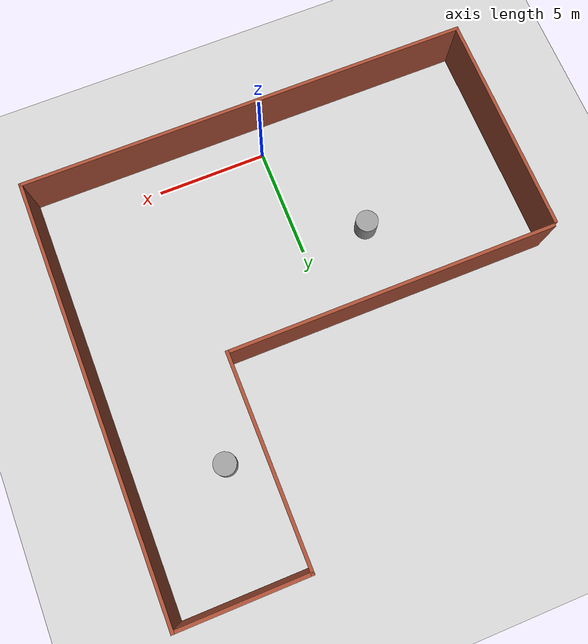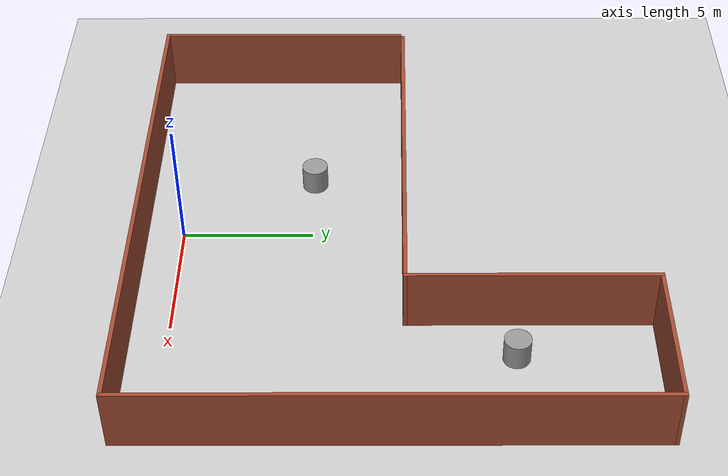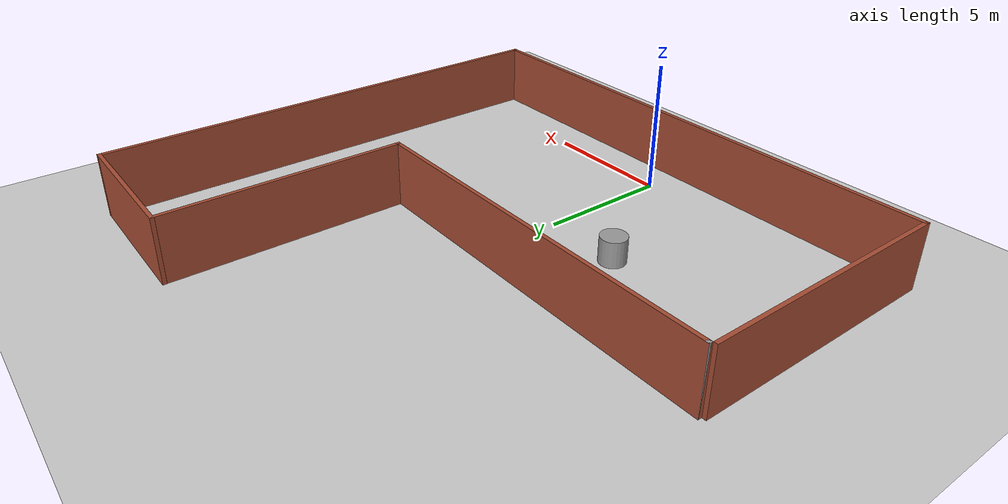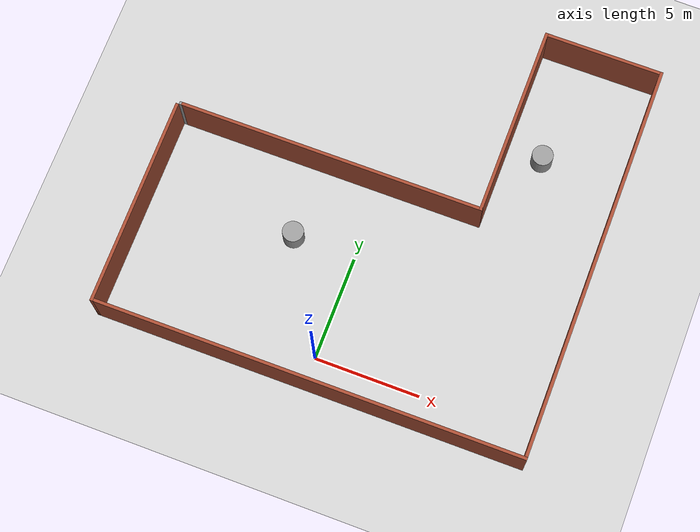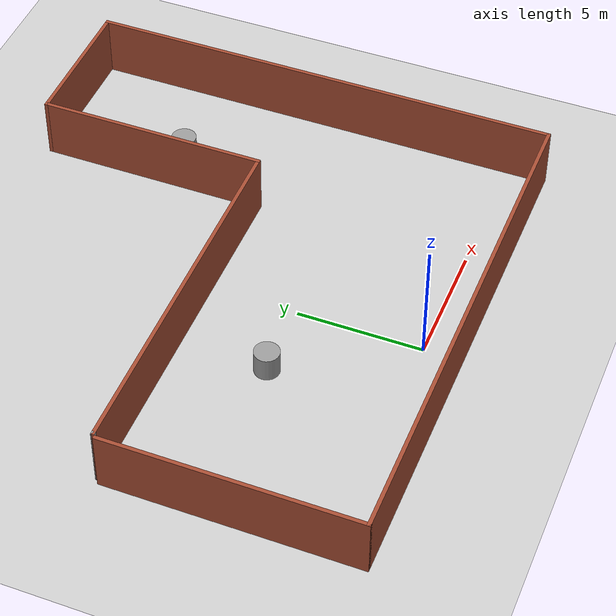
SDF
<sdf version="1.6">
 <world name="default">
  <light name="sun" type="directional">
   <pose>0 0 10 0 -0 0</pose>
   <diffuse>0.8 0.8 0.8 1</diffuse>
   <specular>0.2 0.2 0.2 1</specular>
   <attenuation>
    <range>1000</range>
    <constant>0.9</constant>
    <linear>0.01</linear>
    <quadratic>0.001</quadratic>
   </attenuation>
   <direction>-0.5 0.1 -0.9</direction>
  </light>
  <model name="ground_plane">
   <static>1</static>
   <link name="link">
    <collision name="collision">
     <geometry><plane><normal>0 0 1</normal><size>100 100</size></plane></geometry>
     <surface>
      <contact><collide_bitmask>65535</collide_bitmask></contact>
      <friction><ode><mu>100</mu><mu2>50</mu2></ode></friction>
     </surface>
    </collision>
    <visual name="visual">
     <cast_shadows>0</cast_shadows>
     <geometry><plane><normal>0 0 1</normal><size>100 100</size></plane></geometry>
     <material>
      <script><uri>file://media/materials/scripts/gazebo.material</uri><name>Gazebo/Grey</name></script>
     </material>
    </visual>
   </link>
  </model>
  <gravity>0 0 -9.8</gravity>
  <magnetic_field>6e-06 2.3e-05 -4.2e-05</magnetic_field>
  <atmosphere type="adiabatic"/>
  <physics name="default_physics" default="0" type="ode">
   <max_step_size>0.001</max_step_size>
   <real_time_factor>1</real_time_factor>
   <real_time_update_rate>1000</real_time_update_rate>
  </physics>
  <scene><ambient>0.4 0.4 0.4 1</ambient><background>0.7 0.7 0.7 1</background><shadows>1</shadows></scene>
  <audio><device>default</device></audio>
  <spherical_coordinates>
   <surface_model>EARTH_WGS84</surface_model>
   <latitude_deg>0</latitude_deg>
   <longitude_deg>0</longitude_deg>
   <elevation>0</elevation>
   <heading_deg>0</heading_deg>
  </spherical_coordinates>
  <model name="rvo_world">
   <pose>0.2091 8.0847 0 0 -0 0</pose>
   <link name="Wall_1">
    <collision name="Wall_1_Collision">
     <geometry><box><size>10 0.15 2.5</size></box></geometry>
     <pose>0 0 1.25 0 -0 0</pose>
    </collision>
    <visual name="Wall_1_Visual">
     <pose>0 0 1.25 0 -0 0</pose>
     <geometry><box><size>10 0.15 2.5</size></box></geometry>
     <material>
      <script><uri>file://media/materials/scripts/gazebo.material</uri><name>Gazebo/Bricks</name></script>
      <ambient>1 1 1 1</ambient>
     </material>
     <meta><layer>0</layer></meta>
    </visual>
    <pose>-10.175 -4.625 0 0 -0 -1.5708</pose>
   </link>
   <link name="Wall_2">
    <collision name="Wall_2_Collision">
     <geometry><box><size>20.5 0.15 2.5</size></box></geometry>
     <pose>0 0 1.25 0 -0 0</pose>
    </collision>
    <visual name="Wall_2_Visual">
     <pose>0 0 1.25 0 -0 0</pose>
     <geometry><box><size>20.5 0.15 2.5</size></box></geometry>
     <material>
      <script><uri>file://media/materials/scripts/gazebo.material</uri><name>Gazebo/Bricks</name></script>
      <ambient>1 1 1 1</ambient>
     </material>
     <meta><layer>0</layer></meta>
    </visual>
    <pose>-0 -9.55 0 0 -0 0</pose>
   </link>
   <link name="Wall_3">
    <collision name="Wall_3_Collision">
     <geometry><box><size>19.25 0.15 2.5</size></box></geometry>
     <pose>0 0 1.25 0 -0 0</pose>
    </collision>
    <visual name="Wall_3_Visual">
     <pose>0 0 1.25 0 -0 0</pose>
     <geometry><box><size>19.25 0.15 2.5</size></box></geometry>
     <material>
      <script><uri>file://media/materials/scripts/gazebo.material</uri><name>Gazebo/Bricks</name></script>
      <ambient>1 1 1 1</ambient>
     </material>
     <meta><layer>0</layer></meta>
    </visual>
    <pose>10.175 0 0 0 -0 1.5708</pose>
   </link>
   <link name="Wall_5">
    <collision name="Wall_5_Collision">
     <geometry><box><size>5.75 0.15 2.5</size></box></geometry>
     <pose>0 0 1.25 0 -0 0</pose>
    </collision>
    <visual name="Wall_5_Visual">
     <pose>0 0 1.25 0 -0 0</pose>
     <geometry><box><size>5.75 0.15 2.5</size></box></geometry>
     <material>
      <script><uri>file://media/materials/scripts/gazebo.material</uri><name>Gazebo/Bricks</name></script>
      <ambient>1 1 1 1</ambient>
     </material>
     <meta><layer>0</layer></meta>
    </visual>
    <pose>7.375 9.55 0 0 -0 3.14159</pose>
   </link>
   <link name="Wall_6">
    <collision name="Wall_6_Collision">
     <geometry><box><size>9.25 0.15 2.5</size></box></geometry>
     <pose>0 0 1.25 0 -0 0</pose>
    </collision>
    <visual name="Wall_6_Visual">
     <pose>0 0 1.25 0 -0 0</pose>
     <geometry><box><size>9.25 0.15 2.5</size></box></geometry>
     <material>
      <script><uri>file://media/materials/scripts/gazebo.material</uri><name>Gazebo/Bricks</name></script>
      <ambient>1 1 1 1</ambient>
     </material>
     <meta><layer>0</layer></meta>
    </visual>
    <pose>4.575 5 0 0 -0 -1.5708</pose>
   </link>
   <link name="Wall_7">
    <collision name="Wall_7_Collision">
     <geometry><box><size>14.75 0.15 2.5</size></box></geometry>
     <pose>0 0 1.25 0 -0 0</pose>
    </collision>
    <visual name="Wall_7_Visual">
     <pose>0 0 1.25 0 -0 0</pose>
     <geometry><box><size>14.75 0.15 2.5</size></box></geometry>
     <material>
      <script><uri>file://media/materials/scripts/gazebo.material</uri><name>Gazebo/Bricks</name></script>
      <ambient>1 1 1 1</ambient>
     </material>
     <meta><layer>0</layer></meta>
    </visual>
    <pose>-2.725 0.450001 0 0 -0 3.14159</pose>
   </link>
   <link name="Wall_8">
    <collision name="Wall_8_Collision">
     <geometry><box><size>0.15 0.15 2.5</size></box></geometry>
     <pose>0 0 1.25 0 -0 0</pose>
    </collision>
    <visual name="Wall_8_Visual">
     <pose>0 0 1.25 0 -0 0</pose>
     <geometry><box><size>0.15 0.15 2.5</size></box></geometry>
     <material>
      <script><uri>file://media/materials/scripts/gazebo.material</uri><name>Gazebo/Grey</name></script>
      <ambient>1 1 1 1</ambient>
     </material>
     <meta><layer>0</layer></meta>
    </visual>
    <pose>-10.025 0.450001 0 0 -0 0</pose>
   </link>
   <link name="Wall_9">
    <collision name="Wall_9_Collision">
     <geometry><box><size>0.15 0.15 2.5</size></box></geometry>
     <pose>0 0 1.25 0 -0 0</pose>
    </collision>
    <visual name="Wall_9_Visual">
     <pose>0 0 1.25 0 -0 0</pose>
     <geometry><box><size>0.15 0.15 2.5</size></box></geometry>
     <material>
      <script><uri>file://media/materials/scripts/gazebo.material</uri><name>Gazebo/Grey</name></script>
      <ambient>1 1 1 1</ambient>
     </material>
     <meta><layer>0</layer></meta>
    </visual>
    <pose>-10.025 0.450001 0 0 -0 0</pose>
   </link>
   <static>1</static>
  </model>
  <model name="unit_cylinder">
   <pose>-3 5 0.499994 -4e-06 -2e-06 -0</pose>
   <link name="link">
    <inertial>
     <mass>1</mass>
     <inertia><ixx>0.145833</ixx><ixy>0</ixy><ixz>0</ixz><iyy>0.145833</iyy><iyz>0</iyz><izz>0.125</izz></inertia>
    </inertial>
    <collision name="collision">
     <geometry><cylinder><radius>0.5</radius><length>1</length></cylinder></geometry>
    </collision>
    <visual name="visual">
     <geometry><cylinder><radius>0.5</radius><length>1</length></cylinder></geometry>
     <material>
      <script><name>Gazebo/Grey</name><uri>file://media/materials/scripts/gazebo.material</uri></script>
     </material>
    </visual>
   </link>
  </model>
  <model name="unit_cylinder_0">
   <pose>6.5 12.5 0.499997 3e-06 4e-06 -0</pose>
   <link name="link">
    <inertial>
     <mass>1</mass>
     <inertia><ixx>0.145833</ixx><ixy>0</ixy><ixz>0</ixz><iyy>0.145833</iyy><iyz>0</iyz><izz>0.125</izz></inertia>
    </inertial>
    <collision name="collision">
     <geometry><cylinder><radius>0.5</radius><length>1</length></cylinder></geometry>
    </collision>
    <visual name="visual">
     <geometry><cylinder><radius>0.5</radius><length>1</length></cylinder></geometry>
     <material>
      <script><name>Gazebo/Grey</name><uri>file://media/materials/scripts/gazebo.material</uri></script>
     </material>
    </visual>
   </link>
  </model>
 </world>
</sdf>
